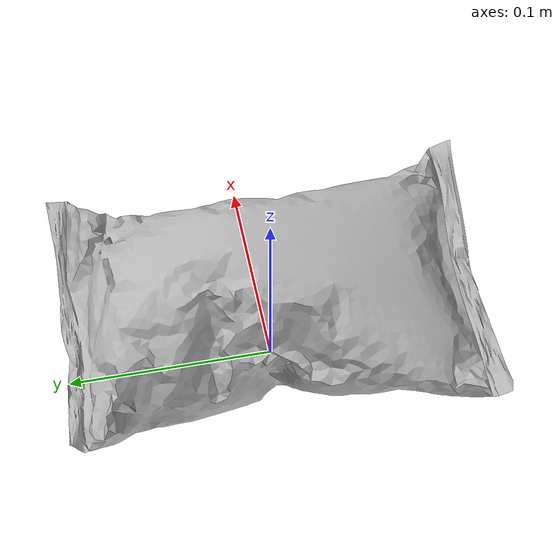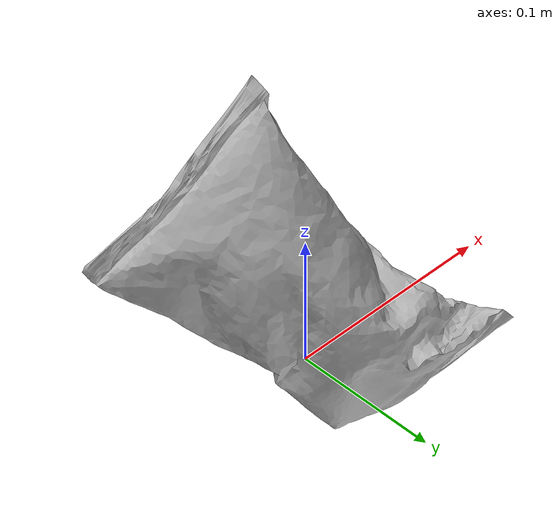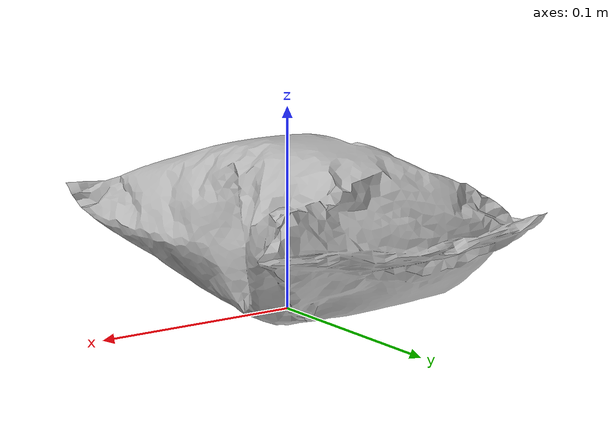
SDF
<?xml version="1.0"?>
<sdf version="1.9">
  <model name="chips-bag-b">
    <static>false</static>
    <link name="link">
      <velocity_decay>
        <linear>0.15</linear>
        <angular>0.20</angular>
      </velocity_decay>
      <visual name="visual">
        <pose>0 0 0 0 -1.57079632679 0</pose>
        <geometry>
          <mesh>
            <uri>model://chips-bag-b/meshes/chips_bag_b.obj</uri>
          </mesh>
        </geometry>
      </visual>
      <collision name="collision_x01_y01">
        <pose>-0.068887 0 0.045059 0 0 0</pose>
        <geometry>
          <box>
            <size>0.012525 0.030004 0.018000</size>
          </box>
        </geometry>
        <surface>
          <friction>
            <ode>
              <mu>0.8</mu>
              <mu2>0.8</mu2>
            </ode>
          </friction>
        </surface>
      </collision>
      <collision name="collision_x01_y02">
        <pose>-0.068887 0 0.047242 0 0 0</pose>
        <geometry>
          <box>
            <size>0.012525 0.019080 0.018000</size>
          </box>
        </geometry>
        <surface>
          <friction>
            <ode>
              <mu>0.8</mu>
              <mu2>0.8</mu2>
            </ode>
          </friction>
        </surface>
      </collision>
      <collision name="collision_x01_y03">
        <pose>-0.068887 0 0.049371 0 0 0</pose>
        <geometry>
          <box>
            <size>0.012525 0.021267 0.018000</size>
          </box>
        </geometry>
        <surface>
          <friction>
            <ode>
              <mu>0.8</mu>
              <mu2>0.8</mu2>
            </ode>
          </friction>
        </surface>
      </collision>
      <collision name="collision_x02_y01">
        <pose>-0.056362 0 0.045239 0 0 0</pose>
        <geometry>
          <box>
            <size>0.012525 0.029654 0.026375</size>
          </box>
        </geometry>
        <surface>
          <friction>
            <ode>
              <mu>0.8</mu>
              <mu2>0.8</mu2>
            </ode>
          </friction>
        </surface>
      </collision>
      <collision name="collision_x02_y02">
        <pose>-0.056362 0 0.046760 0 0 0</pose>
        <geometry>
          <box>
            <size>0.012525 0.139047 0.036202</size>
          </box>
        </geometry>
        <surface>
          <friction>
            <ode>
              <mu>0.8</mu>
              <mu2>0.8</mu2>
            </ode>
          </friction>
        </surface>
      </collision>
      <collision name="collision_x02_y03">
        <pose>-0.056362 0 0.044562 0 0 0</pose>
        <geometry>
          <box>
            <size>0.012525 0.031196 0.036547</size>
          </box>
        </geometry>
        <surface>
          <friction>
            <ode>
              <mu>0.8</mu>
              <mu2>0.8</mu2>
            </ode>
          </friction>
        </surface>
      </collision>
      <collision name="collision_x03_y01">
        <pose>-0.043837 0 0.044979 0 0 0</pose>
        <geometry>
          <box>
            <size>0.012525 0.029604 0.031529</size>
          </box>
        </geometry>
        <surface>
          <friction>
            <ode>
              <mu>0.8</mu>
              <mu2>0.8</mu2>
            </ode>
          </friction>
        </surface>
      </collision>
      <collision name="collision_x03_y02">
        <pose>-0.043837 0 0.043209 0 0 0</pose>
        <geometry>
          <box>
            <size>0.012525 0.139145 0.057851</size>
          </box>
        </geometry>
        <surface>
          <friction>
            <ode>
              <mu>0.8</mu>
              <mu2>0.8</mu2>
            </ode>
          </friction>
        </surface>
      </collision>
      <collision name="collision_x03_y03">
        <pose>-0.043837 0 0.043957 0 0 0</pose>
        <geometry>
          <box>
            <size>0.012525 0.032525 0.053402</size>
          </box>
        </geometry>
        <surface>
          <friction>
            <ode>
              <mu>0.8</mu>
              <mu2>0.8</mu2>
            </ode>
          </friction>
        </surface>
      </collision>
      <collision name="collision_x04_y01">
        <pose>-0.031312 0 0.045242 0 0 0</pose>
        <geometry>
          <box>
            <size>0.012525 0.028480 0.037015</size>
          </box>
        </geometry>
        <surface>
          <friction>
            <ode>
              <mu>0.8</mu>
              <mu2>0.8</mu2>
            </ode>
          </friction>
        </surface>
      </collision>
      <collision name="collision_x04_y02">
        <pose>-0.031312 0 0.044829 0 0 0</pose>
        <geometry>
          <box>
            <size>0.012525 0.138299 0.074102</size>
          </box>
        </geometry>
        <surface>
          <friction>
            <ode>
              <mu>0.8</mu>
              <mu2>0.8</mu2>
            </ode>
          </friction>
        </surface>
      </collision>
      <collision name="collision_x04_y03">
        <pose>-0.031312 0 0.045691 0 0 0</pose>
        <geometry>
          <box>
            <size>0.012525 0.031512 0.054899</size>
          </box>
        </geometry>
        <surface>
          <friction>
            <ode>
              <mu>0.8</mu>
              <mu2>0.8</mu2>
            </ode>
          </friction>
        </surface>
      </collision>
      <collision name="collision_x05_y01">
        <pose>-0.018787 0 0.044801 0 0 0</pose>
        <geometry>
          <box>
            <size>0.012525 0.028544 0.039728</size>
          </box>
        </geometry>
        <surface>
          <friction>
            <ode>
              <mu>0.8</mu>
              <mu2>0.8</mu2>
            </ode>
          </friction>
        </surface>
      </collision>
      <collision name="collision_x05_y02">
        <pose>-0.018787 0 0.044900 0 0 0</pose>
        <geometry>
          <box>
            <size>0.012525 0.138883 0.081314</size>
          </box>
        </geometry>
        <surface>
          <friction>
            <ode>
              <mu>0.8</mu>
              <mu2>0.8</mu2>
            </ode>
          </friction>
        </surface>
      </collision>
      <collision name="collision_x05_y03">
        <pose>-0.018787 0 0.047518 0 0 0</pose>
        <geometry>
          <box>
            <size>0.012525 0.028480 0.057107</size>
          </box>
        </geometry>
        <surface>
          <friction>
            <ode>
              <mu>0.8</mu>
              <mu2>0.8</mu2>
            </ode>
          </friction>
        </surface>
      </collision>
      <collision name="collision_x06_y01">
        <pose>-0.006262 0 0.044657 0 0 0</pose>
        <geometry>
          <box>
            <size>0.012525 0.027852 0.044336</size>
          </box>
        </geometry>
        <surface>
          <friction>
            <ode>
              <mu>0.8</mu>
              <mu2>0.8</mu2>
            </ode>
          </friction>
        </surface>
      </collision>
      <collision name="collision_x06_y02">
        <pose>-0.006262 0 0.044884 0 0 0</pose>
        <geometry>
          <box>
            <size>0.012525 0.139172 0.086288</size>
          </box>
        </geometry>
        <surface>
          <friction>
            <ode>
              <mu>0.8</mu>
              <mu2>0.8</mu2>
            </ode>
          </friction>
        </surface>
      </collision>
      <collision name="collision_x06_y03">
        <pose>-0.006262 0 0.048161 0 0 0</pose>
        <geometry>
          <box>
            <size>0.012525 0.029544 0.057258</size>
          </box>
        </geometry>
        <surface>
          <friction>
            <ode>
              <mu>0.8</mu>
              <mu2>0.8</mu2>
            </ode>
          </friction>
        </surface>
      </collision>
      <collision name="collision_x07_y01">
        <pose>0.006262 0 0.044500 0 0 0</pose>
        <geometry>
          <box>
            <size>0.012525 0.027173 0.044712</size>
          </box>
        </geometry>
        <surface>
          <friction>
            <ode>
              <mu>0.8</mu>
              <mu2>0.8</mu2>
            </ode>
          </friction>
        </surface>
      </collision>
      <collision name="collision_x07_y02">
        <pose>0.006262 0 0.043837 0 0 0</pose>
        <geometry>
          <box>
            <size>0.012525 0.138809 0.087674</size>
          </box>
        </geometry>
        <surface>
          <friction>
            <ode>
              <mu>0.8</mu>
              <mu2>0.8</mu2>
            </ode>
          </friction>
        </surface>
      </collision>
      <collision name="collision_x07_y03">
        <pose>0.006262 0 0.049808 0 0 0</pose>
        <geometry>
          <box>
            <size>0.012525 0.030069 0.053750</size>
          </box>
        </geometry>
        <surface>
          <friction>
            <ode>
              <mu>0.8</mu>
              <mu2>0.8</mu2>
            </ode>
          </friction>
        </surface>
      </collision>
      <collision name="collision_x08_y01">
        <pose>0.018787 0 0.045448 0 0 0</pose>
        <geometry>
          <box>
            <size>0.012525 0.029435 0.045533</size>
          </box>
        </geometry>
        <surface>
          <friction>
            <ode>
              <mu>0.8</mu>
              <mu2>0.8</mu2>
            </ode>
          </friction>
        </surface>
      </collision>
      <collision name="collision_x08_y02">
        <pose>0.018787 0 0.043416 0 0 0</pose>
        <geometry>
          <box>
            <size>0.012525 0.137444 0.086158</size>
          </box>
        </geometry>
        <surface>
          <friction>
            <ode>
              <mu>0.8</mu>
              <mu2>0.8</mu2>
            </ode>
          </friction>
        </surface>
      </collision>
      <collision name="collision_x08_y03">
        <pose>0.018787 0 0.048761 0 0 0</pose>
        <geometry>
          <box>
            <size>0.012525 0.028499 0.050385</size>
          </box>
        </geometry>
        <surface>
          <friction>
            <ode>
              <mu>0.8</mu>
              <mu2>0.8</mu2>
            </ode>
          </friction>
        </surface>
      </collision>
      <collision name="collision_x09_y01">
        <pose>0.031312 0 0.046365 0 0 0</pose>
        <geometry>
          <box>
            <size>0.012525 0.030783 0.043387</size>
          </box>
        </geometry>
        <surface>
          <friction>
            <ode>
              <mu>0.8</mu>
              <mu2>0.8</mu2>
            </ode>
          </friction>
        </surface>
      </collision>
      <collision name="collision_x09_y02">
        <pose>0.031312 0 0.042895 0 0 0</pose>
        <geometry>
          <box>
            <size>0.012525 0.139567 0.082333</size>
          </box>
        </geometry>
        <surface>
          <friction>
            <ode>
              <mu>0.8</mu>
              <mu2>0.8</mu2>
            </ode>
          </friction>
        </surface>
      </collision>
      <collision name="collision_x09_y03">
        <pose>0.031312 0 0.047938 0 0 0</pose>
        <geometry>
          <box>
            <size>0.012525 0.027563 0.049787</size>
          </box>
        </geometry>
        <surface>
          <friction>
            <ode>
              <mu>0.8</mu>
              <mu2>0.8</mu2>
            </ode>
          </friction>
        </surface>
      </collision>
      <collision name="collision_x10_y01">
        <pose>0.043837 0 0.046241 0 0 0</pose>
        <geometry>
          <box>
            <size>0.012525 0.030981 0.040388</size>
          </box>
        </geometry>
        <surface>
          <friction>
            <ode>
              <mu>0.8</mu>
              <mu2>0.8</mu2>
            </ode>
          </friction>
        </surface>
      </collision>
      <collision name="collision_x10_y02">
        <pose>0.043837 0 0.043014 0 0 0</pose>
        <geometry>
          <box>
            <size>0.012525 0.139183 0.068236</size>
          </box>
        </geometry>
        <surface>
          <friction>
            <ode>
              <mu>0.8</mu>
              <mu2>0.8</mu2>
            </ode>
          </friction>
        </surface>
      </collision>
      <collision name="collision_x10_y03">
        <pose>0.043837 0 0.044957 0 0 0</pose>
        <geometry>
          <box>
            <size>0.012525 0.026851 0.045826</size>
          </box>
        </geometry>
        <surface>
          <friction>
            <ode>
              <mu>0.8</mu>
              <mu2>0.8</mu2>
            </ode>
          </friction>
        </surface>
      </collision>
      <collision name="collision_x11_y01">
        <pose>0.056362 0 0.044260 0 0 0</pose>
        <geometry>
          <box>
            <size>0.012525 0.031521 0.029258</size>
          </box>
        </geometry>
        <surface>
          <friction>
            <ode>
              <mu>0.8</mu>
              <mu2>0.8</mu2>
            </ode>
          </friction>
        </surface>
      </collision>
      <collision name="collision_x11_y02">
        <pose>0.056362 0 0.043710 0 0 0</pose>
        <geometry>
          <box>
            <size>0.012525 0.139515 0.035502</size>
          </box>
        </geometry>
        <surface>
          <friction>
            <ode>
              <mu>0.8</mu>
              <mu2>0.8</mu2>
            </ode>
          </friction>
        </surface>
      </collision>
      <collision name="collision_x11_y03">
        <pose>0.056362 0 0.047268 0 0 0</pose>
        <geometry>
          <box>
            <size>0.012525 0.027224 0.037539</size>
          </box>
        </geometry>
        <surface>
          <friction>
            <ode>
              <mu>0.8</mu>
              <mu2>0.8</mu2>
            </ode>
          </friction>
        </surface>
      </collision>
      <collision name="collision_x12_y01">
        <pose>0.068887 0 0.047030 0 0 0</pose>
        <geometry>
          <box>
            <size>0.012525 0.032778 0.018741</size>
          </box>
        </geometry>
        <surface>
          <friction>
            <ode>
              <mu>0.8</mu>
              <mu2>0.8</mu2>
            </ode>
          </friction>
        </surface>
      </collision>
      <collision name="collision_x12_y02">
        <pose>0.068887 0 0.040366 0 0 0</pose>
        <geometry>
          <box>
            <size>0.012525 0.018000 0.018000</size>
          </box>
        </geometry>
        <surface>
          <friction>
            <ode>
              <mu>0.8</mu>
              <mu2>0.8</mu2>
            </ode>
          </friction>
        </surface>
      </collision>
      <collision name="collision_x12_y03">
        <pose>0.068887 0 0.047722 0 0 0</pose>
        <geometry>
          <box>
            <size>0.012525 0.018000 0.018000</size>
          </box>
        </geometry>
        <surface>
          <friction>
            <ode>
              <mu>0.8</mu>
              <mu2>0.8</mu2>
            </ode>
          </friction>
        </surface>
      </collision>
      <inertial>
        <pose>0 0 0.044014 0 0 0</pose>
        <mass>0.05</mass>
        <inertia>
          <ixx>0.0002147619</ixx>
          <iyy>0.0001264113</iyy>
          <izz>0.0002765988</izz>
          <ixy>0.0</ixy>
          <ixz>0.0</ixz>
          <iyz>0.0</iyz>
        </inertia>
      </inertial>
    </link>
  </model>
</sdf>
